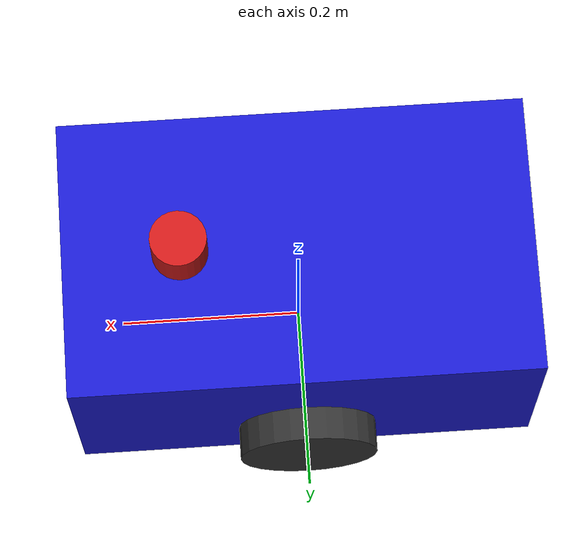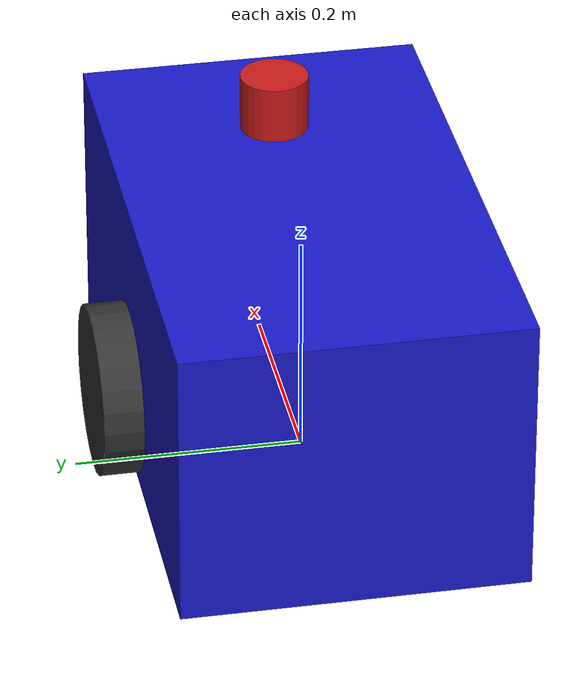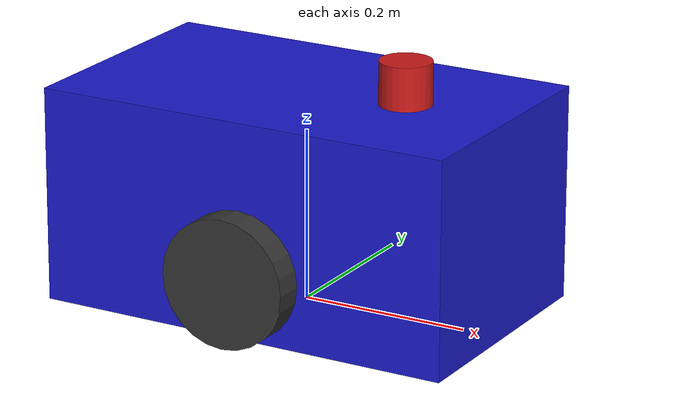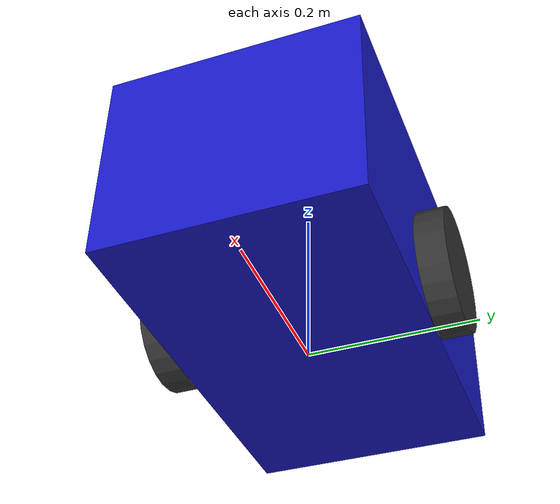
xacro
<?xml version="1.0"?>
<!-- 差速驱动机器人 XACRO 模型：底盘 + 双驱动轮 + 随动轮 + 激光雷达 -->
<robot xmlns:xacro="http://www.ros.org/wiki/xacro" name="diff_drive_robot">

  <!-- ==================== 尺寸参数（改这里即可联动所有部件） ==================== -->
  <xacro:property name="base_length" value="0.5"/>  <!-- 底盘长 -->
  <xacro:property name="base_width"  value="0.3"/>  <!-- 底盘宽 -->
  <xacro:property name="base_height" value="0.25"/> <!-- 底盘高 -->

  <xacro:property name="wheel_radius"   value="0.075"/> <!-- 驱动轮半径 -->
  <xacro:property name="wheel_width"    value="0.05"/>  <!-- 驱动轮宽度 -->
  <xacro:property name="wheel_separation" value="0.32"/> <!-- 左右轮间距（轮距） -->

  <xacro:property name="caster_radius" value="0.05"/> <!-- 随动轮半径 -->
  <xacro:property name="caster_width"  value="0.05"/> <!-- 随动轮宽度 -->

  <xacro:property name="laser_height" value="0.05"/> <!-- 激光雷达高度 -->
  <xacro:property name="laser_radius" value="0.03"/> <!-- 激光雷达半径 -->

  <!-- 质量参数（总重约2kg，合理分配） -->
  <xacro:property name="base_mass"   value="1.2"/>  <!-- 底盘质量 -->
  <xacro:property name="wheel_mass"  value="0.15"/> <!-- 单个驱动轮质量 -->
  <xacro:property name="caster_mass" value="0.1"/>  <!-- 随动轮质量 -->
  <xacro:property name="laser_mass"  value="0.05"/> <!-- 激光雷达质量 -->

  <!-- ==================== 惯性计算宏（Gazebo 仿真必需） ==================== -->
  <!-- 长方体惯性张量 -->
  <xacro:macro name="box_inertia" params="mass x y z">
    <inertial>
      <mass value="${mass}"/>
      <inertia ixx="${mass*(y*y+z*z)/12}" ixy="0" ixz="0"
               iyy="${mass*(x*x+z*z)/12}" iyz="0"
               izz="${mass*(x*x+y*y)/12}"/>
    </inertial>
  </xacro:macro>

  <!-- 圆柱体惯性张量 -->
  <xacro:macro name="cylinder_inertia" params="mass radius height">
    <inertial>
      <mass value="${mass}"/>
      <inertia ixx="${mass*(3*radius*radius+height*height)/12}" ixy="0" ixz="0"
               iyy="${mass*(3*radius*radius+height*height)/12}" iyz="0"
               izz="${mass*radius*radius/2}"/>
    </inertial>
  </xacro:macro>

  <!-- ==================== 底盘 ==================== -->
  <link name="base_link">
    <visual>
      <geometry>
        <box size="${base_length} ${base_width} ${base_height}"/>
      </geometry>
      <origin xyz="0 0 ${base_height/2}" rpy="0 0 0"/>
      <material name="blue">
        <color rgba="0.1 0.1 0.8 1.0"/>
      </material>
    </visual>
    <collision>
      <geometry>
        <box size="${base_length} ${base_width} ${base_height}"/>
      </geometry>
      <origin xyz="0 0 ${base_height/2}" rpy="0 0 0"/>
    </collision>
    <xacro:box_inertia mass="${base_mass}" x="${base_length}" y="${base_width}" z="${base_height}"/>
  </link>

  <!-- ==================== 左驱动轮 ==================== -->
  <link name="left_wheel_link">
    <visual>
      <geometry>
        <cylinder radius="${wheel_radius}" length="${wheel_width}"/>
      </geometry>
      <origin xyz="0 0 0" rpy="${pi/2} 0 0"/>
      <material name="dark_grey">
        <color rgba="0.2 0.2 0.2 1.0"/>
      </material>
    </visual>
    <collision>
      <geometry>
        <cylinder radius="${wheel_radius}" length="${wheel_width}"/>
      </geometry>
      <origin xyz="0 0 0" rpy="${pi/2} 0 0"/>
    </collision>
    <xacro:cylinder_inertia mass="${wheel_mass}" radius="${wheel_radius}" height="${wheel_width}"/>
  </link>

  <joint name="base_to_left_wheel" type="continuous">
    <parent link="base_link"/>
    <child link="left_wheel_link"/>
    <origin xyz="0 ${wheel_separation/2} ${wheel_radius}" rpy="0 0 0"/>
    <axis xyz="0 1 0"/>
  </joint>

  <!-- ==================== 右驱动轮 ==================== -->
  <link name="right_wheel_link">
    <visual>
      <geometry>
        <cylinder radius="${wheel_radius}" length="${wheel_width}"/>
      </geometry>
      <origin xyz="0 0 0" rpy="${pi/2} 0 0"/>
      <material name="dark_grey">
        <color rgba="0.2 0.2 0.2 1.0"/>
      </material>
    </visual>
    <collision>
      <geometry>
        <cylinder radius="${wheel_radius}" length="${wheel_width}"/>
      </geometry>
      <origin xyz="0 0 0" rpy="${pi/2} 0 0"/>
    </collision>
    <xacro:cylinder_inertia mass="${wheel_mass}" radius="${wheel_radius}" height="${wheel_width}"/>
  </link>

  <joint name="base_to_right_wheel" type="continuous">
    <parent link="base_link"/>
    <child link="right_wheel_link"/>
    <origin xyz="0 -${wheel_separation/2} ${wheel_radius}" rpy="0 0 0"/>
    <axis xyz="0 1 0"/>
  </joint>

  <!-- ==================== 后方随动轮（固定，仅起支撑作用） ==================== -->
  <link name="caster_wheel_link">
    <visual>
      <geometry>
        <cylinder radius="${caster_radius}" length="${caster_width}"/>
      </geometry>
      <origin xyz="0 0 0" rpy="${pi/2} 0 0"/>
      <material name="light_grey">
        <color rgba="0.6 0.6 0.6 1.0"/>
      </material>
    </visual>
    <collision>
      <geometry>
        <cylinder radius="${caster_radius}" length="${caster_width}"/>
      </geometry>
      <origin xyz="0 0 0" rpy="${pi/2} 0 0"/>
    </collision>
    <xacro:cylinder_inertia mass="${caster_mass}" radius="${caster_radius}" height="${caster_width}"/>
  </link>

  <joint name="base_to_caster" type="fixed">
    <parent link="base_link"/>
    <child link="caster_wheel_link"/>
    <origin xyz="-${base_length/2 - caster_radius} 0 ${caster_radius}" rpy="0 0 0"/>
  </joint>

  <!-- ==================== 激光雷达（安装在底盘顶部前方） ==================== -->
  <link name="laser_link">
    <visual>
      <geometry>
        <cylinder radius="${laser_radius}" length="${laser_height}"/>
      </geometry>
      <origin xyz="0 0 ${laser_height/2}" rpy="0 0 0"/>
      <material name="red">
        <color rgba="0.8 0.1 0.1 1.0"/>
      </material>
    </visual>
    <collision>
      <geometry>
        <cylinder radius="${laser_radius}" length="${laser_height}"/>
      </geometry>
      <origin xyz="0 0 ${laser_height/2}" rpy="0 0 0"/>
    </collision>
    <xacro:cylinder_inertia mass="${laser_mass}" radius="${laser_radius}" height="${laser_height}"/>
  </link>

  <joint name="base_to_laser" type="fixed">
    <parent link="base_link"/>
    <child link="laser_link"/>
    <origin xyz="${base_length/4} 0 ${base_height}" rpy="0 0 0"/>
  </joint>

  <!-- ==================== Gazebo 插件 ==================== -->

  <!-- 差速驱动插件：订阅 /cmd_vel，发布 /odom 和 TF -->
  <gazebo reference="base_link">
    <plugin filename="libgazebo_ros_diff_drive.so" name="diff_drive_controller">
      <ros>
        <namespace>/</namespace>
      </ros>
      <update_rate>30</update_rate>
      <left_joint>base_to_left_wheel</left_joint>
      <right_joint>base_to_right_wheel</right_joint>
      <wheel_separation>${wheel_separation}</wheel_separation>
      <wheel_diameter>${wheel_radius * 2}</wheel_diameter>
      <max_wheel_torque>200</max_wheel_torque>
      <max_wheel_acceleration>10.0</max_wheel_acceleration>
      <publish_odom>true</publish_odom>
      <publish_odom_tf>true</publish_odom_tf>
      <publish_wheel_tf>true</publish_wheel_tf>
      <odometry_frame>odom</odometry_frame>
      <robot_base_frame>base_link</robot_base_frame>
      <command_topic>cmd_vel</command_topic>
      <odom_topic>odom</odom_topic>
    </plugin>
  </gazebo>

  <!-- 激光雷达插件：libgazebo_ros_laser.so 确保发布到 /scan -->
  <gazebo reference="laser_link">
    <sensor type="ray" name="laser_scanner">
      <always_on>true</always_on>
      <update_rate>10</update_rate>
      <visualize>true</visualize>
      <pose>0 0 0 0 0 0</pose>
      <ray>
        <scan>
          <horizontal>
            <samples>360</samples>
            <resolution>1</resolution>
            <min_angle>-3.14159</min_angle>
            <max_angle>3.14159</max_angle>
          </horizontal>
        </scan>
        <range>
          <min>0.1</min>
          <max>5.0</max>
          <resolution>0.01</resolution>
        </range>
      </ray>
      <plugin name="laser_scanner_plugin" filename="libgazebo_ros_laser.so">
        <topicName>/scan</topicName>
        <frameName>laser_link</frameName>
      </plugin>
    </sensor>
  </gazebo>

</robot>
